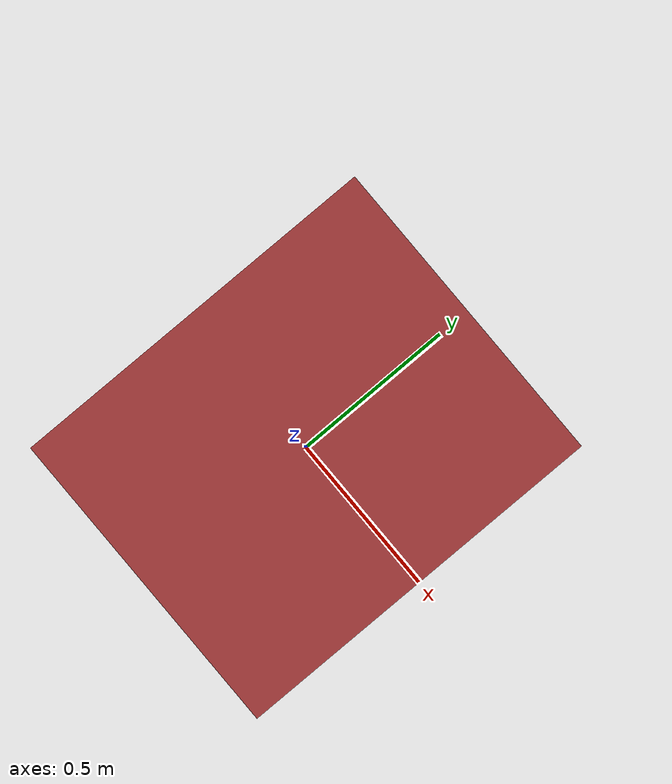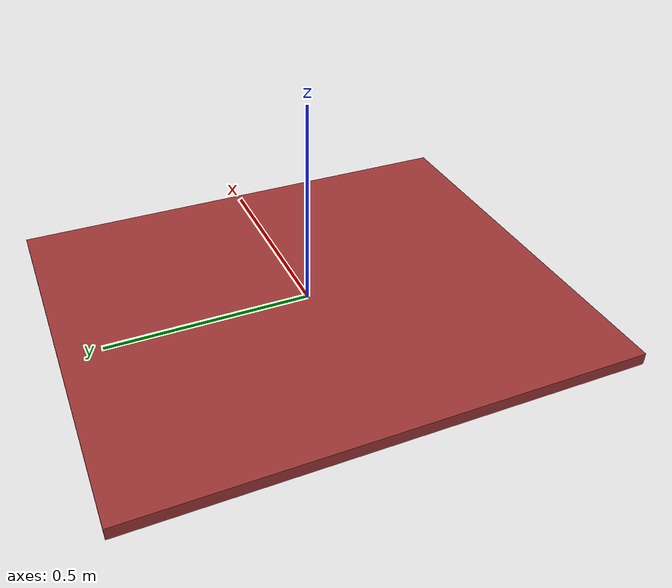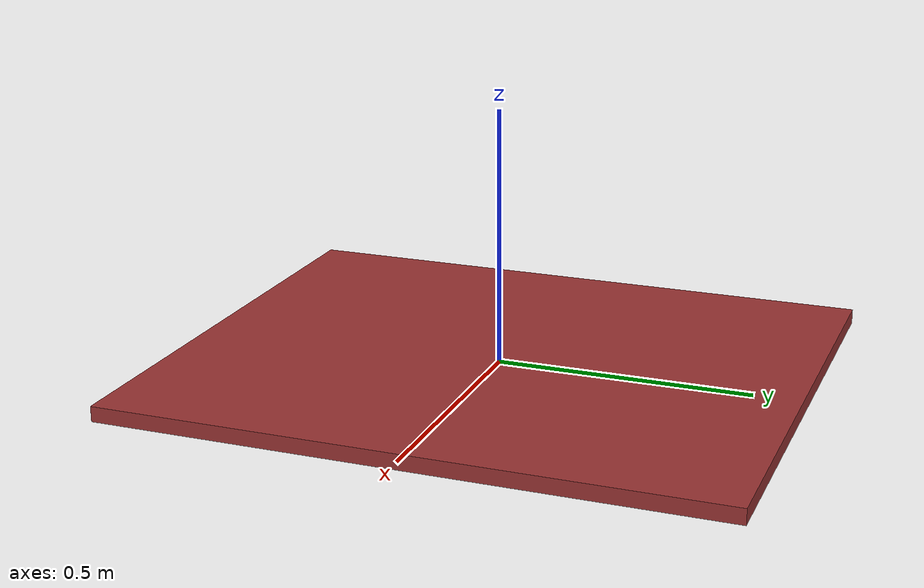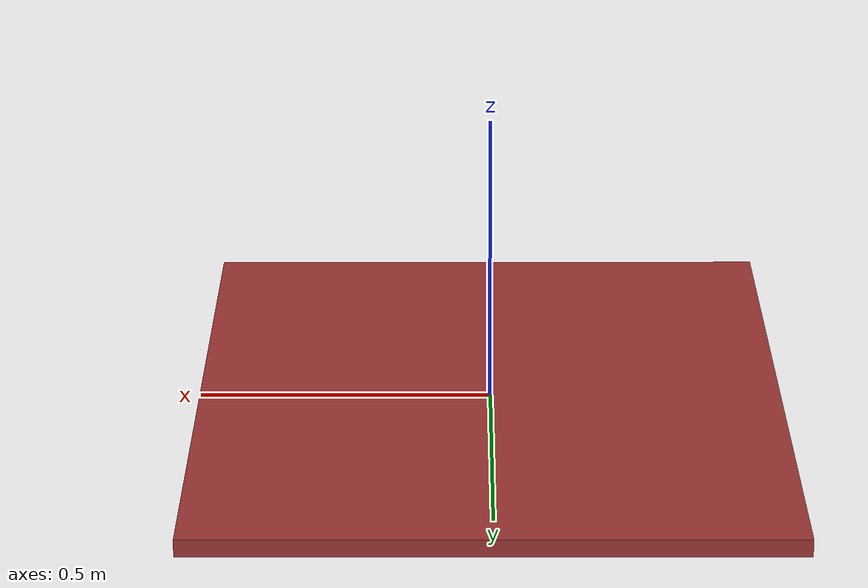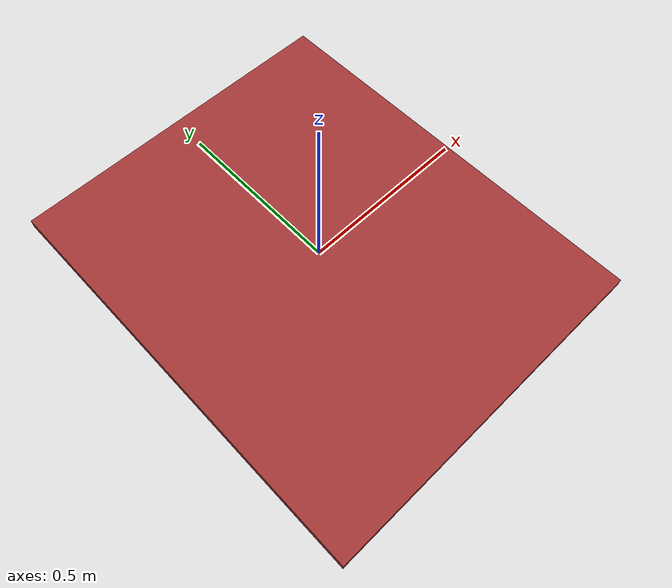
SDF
<?xml version="1.0"?>
<sdf version="1.7">
  <model name="table_top">
    <link name="table_top_link">
      <inertial>
        <mass>50.0</mass>
        <inertia>
          <ixx>6.00</ixx>
          <ixy>0</ixy>
          <ixz>0</ixz>
          <iyy>4.17</iyy>
          <iyz>0</iyz>
          <izz>10.17</izz>
        </inertia>
      </inertial>
    <visual name="bottom">
        <pose>0 0 0 0 0 0</pose>
        <geometry>
          <box>
            <size>1 1.2 0.03</size>
          </box>
        </geometry>
        <material>
          <diffuse>0.6 0.2 0.2 1.0</diffuse>
        </material>
      </visual>
      <collision name="bottom">
        <pose>0 0 0 0 0 0</pose>
        <geometry>
          <box>
            <size>1 1.2 0.03</size>
          </box>
        </geometry>
        <drake:proximity_properties>
          <drake:compliant_hydroelastic/>
          <drake:hydroelastic_modulus>1.0e16</drake:hydroelastic_modulus>
        </drake:proximity_properties>
      </collision>
    </link>
    <frame name="table_top_center">
      <pose relative_to="table_top_link">0 0 -0.015 0 0 0</pose>
    </frame>
  </model>
</sdf>
